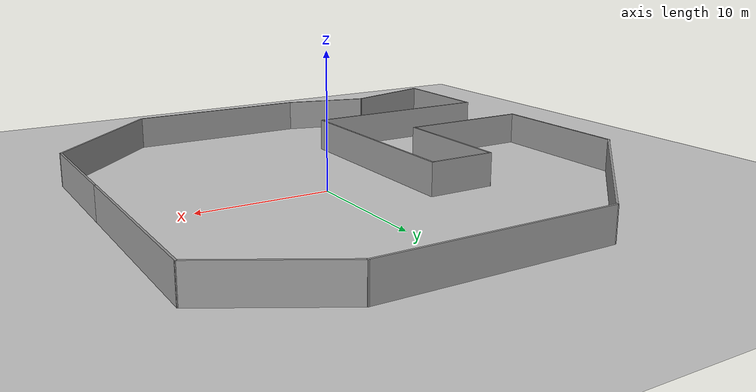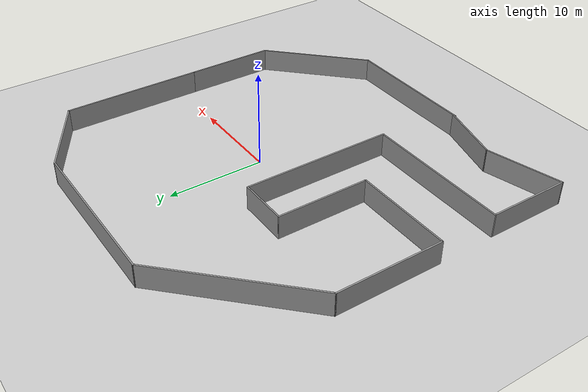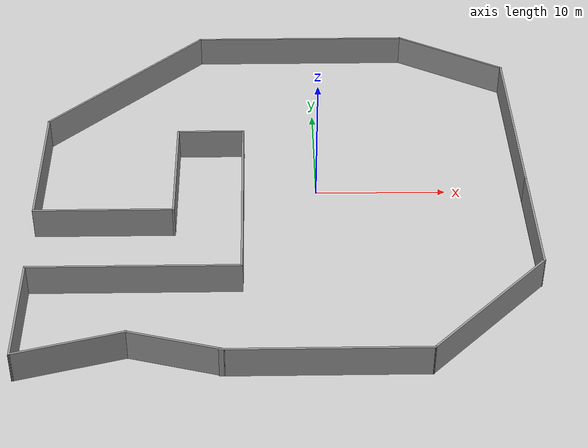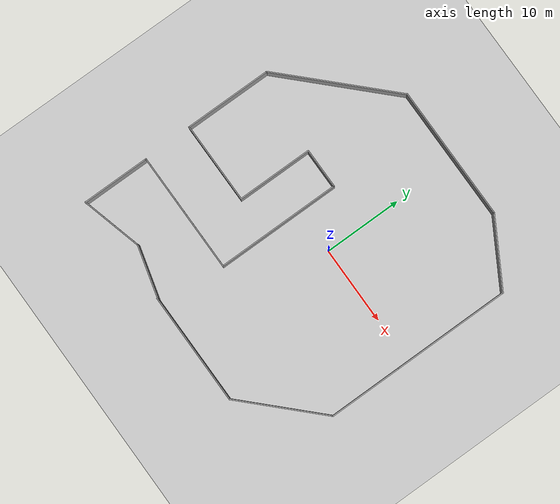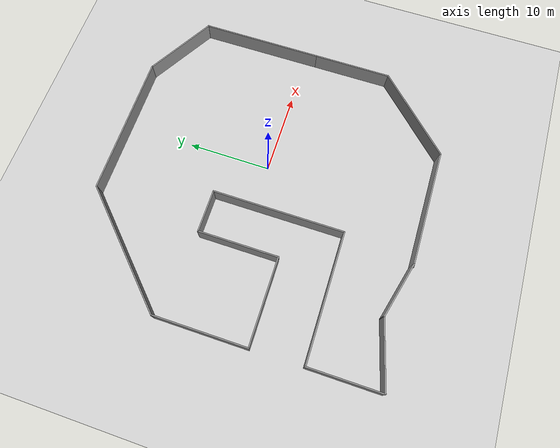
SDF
<sdf version="1.7">
 <world name="default">
  <light name="sun" type="directional">
   <pose>0 0 10 0 -0 0</pose>
   <diffuse>0.8 0.8 0.8 1</diffuse>
   <specular>0.2 0.2 0.2 1</specular>
   <attenuation>
    <range>1000</range>
    <constant>0.9</constant>
    <linear>0.01</linear>
    <quadratic>0.001</quadratic>
   </attenuation>
   <direction>-0.5 0.1 -0.9</direction>
   <spot><inner_angle>0</inner_angle><outer_angle>0</outer_angle><falloff>0</falloff></spot>
  </light>
  <model name="ground_plane">
   <static>1</static>
   <link name="link">
    <collision name="collision">
     <geometry><plane><normal>0 0 1</normal><size>100 100</size></plane></geometry>
     <surface><friction><ode><mu>100</mu><mu2>50</mu2></ode></friction></surface>
    </collision>
    <visual name="visual">
     <cast_shadows>0</cast_shadows>
     <geometry><plane><normal>0 0 1</normal><size>100 100</size></plane></geometry>
     <material>
      <script><uri>file://media/materials/scripts/gazebo.material</uri><name>Gazebo/Grey</name></script>
     </material>
    </visual>
   </link>
  </model>
  <gravity>0 0 -9.8</gravity>
  <magnetic_field>6e-06 2.3e-05 -4.2e-05</magnetic_field>
  <atmosphere type="adiabatic"/>
  <physics type="ode">
   <max_step_size>0.001</max_step_size>
   <real_time_factor>1</real_time_factor>
   <real_time_update_rate>1000</real_time_update_rate>
  </physics>
  <scene><ambient>0.4 0.4 0.4 1</ambient><background>0.7 0.7 0.7 1</background><shadows>1</shadows></scene>
  <audio><device>default</device></audio>
  <spherical_coordinates>
   <surface_model>EARTH_WGS84</surface_model>
   <latitude_deg>0</latitude_deg>
   <longitude_deg>0</longitude_deg>
   <elevation>0</elevation>
   <heading_deg>0</heading_deg>
  </spherical_coordinates>
  <model name="Untitled">
   <pose>-2.62368 -0.749166 0 0 -0 0</pose>
   <link name="Wall_21">
    <collision name="Wall_21_Collision">
     <geometry><box><size>14.5 0.15 2.5</size></box></geometry>
     <pose>0 0 1.25 0 -0 0</pose>
    </collision>
    <visual name="Wall_21_Visual">
     <pose>0 0 1.25 0 -0 0</pose>
     <geometry><box><size>14.5 0.15 2.5</size></box></geometry>
     <material>
      <script><uri>file://media/materials/scripts/gazebo.material</uri><name>Gazebo/Grey</name></script>
      <ambient>1 1 1 1</ambient>
     </material>
     <meta><layer>0</layer></meta>
    </visual>
    <pose>2.73666 -18.5941 0 0 -0 0</pose>
   </link>
   <link name="Wall_22">
    <collision name="Wall_22_Collision">
     <geometry><box><size>12.25 0.15 2.5</size></box></geometry>
     <pose>0 0 1.25 0 -0 0</pose>
    </collision>
    <visual name="Wall_22_Visual">
     <pose>0 0 1.25 0 -0 0</pose>
     <geometry><box><size>12.25 0.15 2.5</size></box></geometry>
     <material>
      <script><uri>file://media/materials/scripts/gazebo.material</uri><name>Gazebo/Grey</name></script>
      <ambient>1 1 1 1</ambient>
     </material>
     <meta><layer>0</layer></meta>
    </visual>
    <pose>14.1897 -14.3161 0 0 -0 0.785398</pose>
   </link>
   <link name="Wall_23">
    <collision name="Wall_23_Collision">
     <geometry><box><size>9.5 0.15 2.5</size></box></geometry>
     <pose>0 0 1.25 0 -0 0</pose>
    </collision>
    <visual name="Wall_23_Visual">
     <pose>0 0 1.25 0 -0 0</pose>
     <geometry><box><size>9.5 0.15 2.5</size></box></geometry>
     <material>
      <script><uri>file://media/materials/scripts/gazebo.material</uri><name>Gazebo/Grey</name></script>
      <ambient>1 1 1 1</ambient>
     </material>
     <meta><layer>0</layer></meta>
    </visual>
    <pose>18.4677 -5.36312 0 0 -0 1.5708</pose>
   </link>
   <link name="Wall_24">
    <collision name="Wall_24_Collision">
     <geometry><box><size>15 0.15 2.5</size></box></geometry>
     <pose>0 0 1.25 0 -0 0</pose>
    </collision>
    <visual name="Wall_24_Visual">
     <pose>0 0 1.25 0 -0 0</pose>
     <geometry><box><size>15 0.15 2.5</size></box></geometry>
     <material>
      <script><uri>file://media/materials/scripts/gazebo.material</uri><name>Gazebo/Grey</name></script>
      <ambient>1 1 1 1</ambient>
     </material>
     <meta><layer>0</layer></meta>
    </visual>
    <pose>18.4677 6.73688 0 0 -0 1.5708</pose>
   </link>
   <link name="Wall_25">
    <collision name="Wall_25_Collision">
     <geometry><box><size>9.5 0.15 2.5</size></box></geometry>
     <pose>0 0 1.25 0 -0 0</pose>
    </collision>
    <visual name="Wall_25_Visual">
     <pose>0 0 1.25 0 -0 0</pose>
     <geometry><box><size>9.5 0.15 2.5</size></box></geometry>
     <material>
      <script><uri>file://media/materials/scripts/gazebo.material</uri><name>Gazebo/Grey</name></script>
      <ambient>1 1 1 1</ambient>
     </material>
     <meta><layer>0</layer></meta>
    </visual>
    <pose>14.419 16.4994 0 0 -0 2.61799</pose>
   </link>
   <link name="Wall_26">
    <collision name="Wall_26_Collision">
     <geometry><box><size>17.25 0.15 2.5</size></box></geometry>
     <pose>0 0 1.25 0 -0 0</pose>
    </collision>
    <visual name="Wall_26_Visual">
     <pose>0 0 1.25 0 -0 0</pose>
     <geometry><box><size>17.25 0.15 2.5</size></box></geometry>
     <material>
      <script><uri>file://media/materials/scripts/gazebo.material</uri><name>Gazebo/Grey</name></script>
      <ambient>1 1 1 1</ambient>
     </material>
     <meta><layer>0</layer></meta>
    </visual>
    <pose>1.82032 18.8369 0 0 -0 3.14159</pose>
   </link>
   <link name="Wall_27">
    <collision name="Wall_27_Collision">
     <geometry><box><size>16.75 0.15 2.5</size></box></geometry>
     <pose>0 0 1.25 0 -0 0</pose>
    </collision>
    <visual name="Wall_27_Visual">
     <pose>0 0 1.25 0 -0 0</pose>
     <geometry><box><size>16.75 0.15 2.5</size></box></geometry>
     <material>
      <script><uri>file://media/materials/scripts/gazebo.material</uri><name>Gazebo/Grey</name></script>
      <ambient>1 1 1 1</ambient>
     </material>
     <meta><layer>0</layer></meta>
    </visual>
    <pose>-12.5987 12.9679 0 0 -0 -2.35619</pose>
   </link>
   <link name="Wall_28">
    <collision name="Wall_28_Collision">
     <geometry><box><size>11.25 0.15 2.5</size></box></geometry>
     <pose>0 0 1.25 0 -0 0</pose>
    </collision>
    <visual name="Wall_28_Visual">
     <pose>0 0 1.25 0 -0 0</pose>
     <geometry><box><size>11.25 0.15 2.5</size></box></geometry>
     <material>
      <script><uri>file://media/materials/scripts/gazebo.material</uri><name>Gazebo/Grey</name></script>
      <ambient>1 1 1 1</ambient>
     </material>
     <meta><layer>0</layer></meta>
    </visual>
    <pose>-18.4677 1.54891 0 0 -0 -1.5708</pose>
   </link>
   <link name="Wall_29">
    <collision name="Wall_29_Collision">
     <geometry><box><size>10.5 0.15 2.5</size></box></geometry>
     <pose>0 0 1.25 0 -0 0</pose>
    </collision>
    <visual name="Wall_29_Visual">
     <pose>0 0 1.25 0 -0 0</pose>
     <geometry><box><size>10.5 0.15 2.5</size></box></geometry>
     <material>
      <script><uri>file://media/materials/scripts/gazebo.material</uri><name>Gazebo/Grey</name></script>
      <ambient>1 1 1 1</ambient>
     </material>
     <meta><layer>0</layer></meta>
    </visual>
    <pose>-13.2927 -4.00109 0 0 -0 0</pose>
   </link>
   <link name="Wall_30">
    <collision name="Wall_30_Collision">
     <geometry><box><size>9.75 0.15 2.5</size></box></geometry>
     <pose>0 0 1.25 0 -0 0</pose>
    </collision>
    <visual name="Wall_30_Visual">
     <pose>0 0 1.25 0 -0 0</pose>
     <geometry><box><size>9.75 0.15 2.5</size></box></geometry>
     <material>
      <script><uri>file://media/materials/scripts/gazebo.material</uri><name>Gazebo/Grey</name></script>
      <ambient>1 1 1 1</ambient>
     </material>
     <meta><layer>0</layer></meta>
    </visual>
    <pose>-8.11765 0.798908 0 0 -0 1.5708</pose>
   </link>
   <link name="Wall_31">
    <collision name="Wall_31_Collision">
     <geometry><box><size>5.25 0.15 2.5</size></box></geometry>
     <pose>0 0 1.25 0 -0 0</pose>
    </collision>
    <visual name="Wall_31_Visual">
     <pose>0 0 1.25 0 -0 0</pose>
     <geometry><box><size>5.25 0.15 2.5</size></box></geometry>
     <material>
      <script><uri>file://media/materials/scripts/gazebo.material</uri><name>Gazebo/Grey</name></script>
      <ambient>1 1 1 1</ambient>
     </material>
     <meta><layer>0</layer></meta>
    </visual>
    <pose>-5.56765 5.59891 0 0 -0 0</pose>
   </link>
   <link name="Wall_32">
    <collision name="Wall_32_Collision">
     <geometry><box><size>16 0.15 2.5</size></box></geometry>
     <pose>0 0 1.25 0 -0 0</pose>
    </collision>
    <visual name="Wall_32_Visual">
     <pose>0 0 1.25 0 -0 0</pose>
     <geometry><box><size>16 0.15 2.5</size></box></geometry>
     <material>
      <script><uri>file://media/materials/scripts/gazebo.material</uri><name>Gazebo/Grey</name></script>
      <ambient>1 1 1 1</ambient>
     </material>
     <meta><layer>0</layer></meta>
    </visual>
    <pose>-3.01765 -2.32609 0 0 -0 -1.5708</pose>
   </link>
   <link name="Wall_33">
    <collision name="Wall_33_Collision">
     <geometry><box><size>15.5 0.15 2.5</size></box></geometry>
     <pose>0 0 1.25 0 -0 0</pose>
    </collision>
    <visual name="Wall_33_Visual">
     <pose>0 0 1.25 0 -0 0</pose>
     <geometry><box><size>15.5 0.15 2.5</size></box></geometry>
     <material>
      <script><uri>file://media/materials/scripts/gazebo.material</uri><name>Gazebo/Grey</name></script>
      <ambient>1 1 1 1</ambient>
     </material>
     <meta><layer>0</layer></meta>
    </visual>
    <pose>-10.6927 -10.2511 0 0 -0 3.14159</pose>
   </link>
   <link name="Wall_34">
    <collision name="Wall_34_Collision">
     <geometry><box><size>8.75 0.15 2.5</size></box></geometry>
     <pose>0 0 1.25 0 -0 0</pose>
    </collision>
    <visual name="Wall_34_Visual">
     <pose>0 0 1.25 0 -0 0</pose>
     <geometry><box><size>8.75 0.15 2.5</size></box></geometry>
     <material>
      <script><uri>file://media/materials/scripts/gazebo.material</uri><name>Gazebo/Grey</name></script>
      <ambient>1 1 1 1</ambient>
     </material>
     <meta><layer>0</layer></meta>
    </visual>
    <pose>-18.3677 -14.5511 0 0 -0 -1.5708</pose>
   </link>
   <link name="Wall_35">
    <collision name="Wall_35_Collision">
     <geometry><box><size>8 0.15 2.5</size></box></geometry>
     <pose>0 0 1.25 0 -0 0</pose>
    </collision>
    <visual name="Wall_35_Visual">
     <pose>0 0 1.25 0 -0 0</pose>
     <geometry><box><size>8 0.15 2.5</size></box></geometry>
     <material>
      <script><uri>file://media/materials/scripts/gazebo.material</uri><name>Gazebo/Grey</name></script>
      <ambient>1 1 1 1</ambient>
     </material>
     <meta><layer>0</layer></meta>
    </visual>
    <pose>-14.5764 -17.8352 0 0 -0 0.261799</pose>
   </link>
   <link name="Wall_36">
    <collision name="Wall_36_Collision">
     <geometry><box><size>7 0.15 2.5</size></box></geometry>
     <pose>0 0 1.25 0 -0 0</pose>
    </collision>
    <visual name="Wall_36_Visual">
     <pose>0 0 1.25 0 -0 0</pose>
     <geometry><box><size>7 0.15 2.5</size></box></geometry>
     <material>
      <script><uri>file://media/materials/scripts/gazebo.material</uri><name>Gazebo/Grey</name></script>
      <ambient>1 1 1 1</ambient>
     </material>
     <meta><layer>0</layer></meta>
    </visual>
    <pose>-7.47684 -17.7058 0 0 -0 -0.261799</pose>
   </link>
   <static>1</static>
  </model>
 </world>
</sdf>
